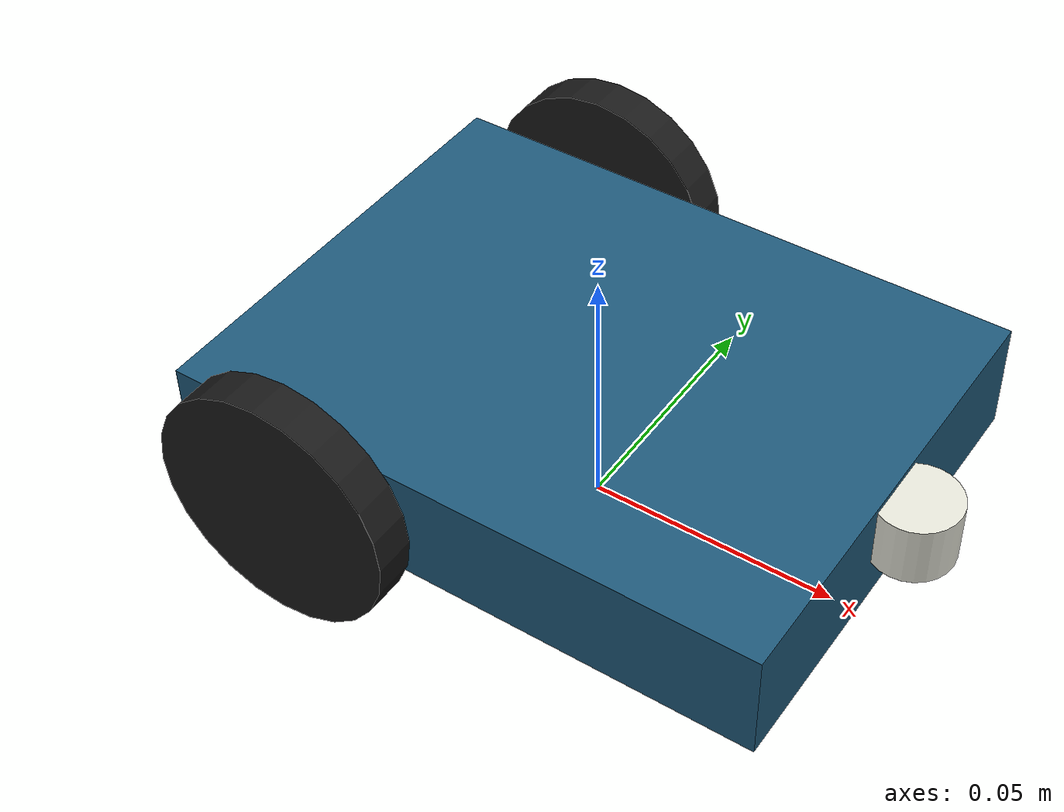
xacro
<?xml version="1.0"?>
<robot xmlns:xacro="http://www.ros.org/wiki/xacro" name="shiftgate_rover">
  <xacro:property name="wheel_radius" value="0.024"/>
  <xacro:property name="wheel_width" value="0.008"/>
  <xacro:property name="track" value="0.102"/>
  <xacro:property name="chassis_l" value="0.118"/>
  <xacro:property name="chassis_w" value="0.090"/>
  <xacro:property name="chassis_h" value="0.022"/>
  <xacro:property name="axle_z" value="0.024"/>

  <link name="base_link">
    <visual>
      <origin xyz="0 0 ${axle_z}" rpy="0 0 0"/>
      <geometry><box size="${chassis_l} ${chassis_w} ${chassis_h}"/></geometry>
      <material name="teal"><color rgba="0.12 0.35 0.48 1"/></material>
    </visual>
    <collision>
      <origin xyz="0 0 ${axle_z}" rpy="0 0 0"/>
      <geometry><box size="${chassis_l} ${chassis_w} ${chassis_h}"/></geometry>
    </collision>
    <inertial>
      <origin xyz="0 0 ${axle_z}" rpy="0 0 0"/>
      <mass value="0.40"/>
      <inertia ixx="0.001" iyy="0.0015" izz="0.0015" ixy="0" ixz="0" iyz="0"/>
    </inertial>
  </link>

  <xacro:macro name="wheel" params="name y_off">
    <link name="${name}">
      <visual>
        <origin xyz="0 0 0" rpy="1.5708 0 0"/>
        <geometry><cylinder radius="${wheel_radius}" length="${wheel_width}"/></geometry>
        <material name="black"><color rgba="0.1 0.1 0.1 1"/></material>
      </visual>
      <collision>
        <origin xyz="0 0 0" rpy="1.5708 0 0"/>
        <geometry><cylinder radius="${wheel_radius}" length="${wheel_width}"/></geometry>
      </collision>
      <inertial>
        <mass value="0.03"/>
        <inertia ixx="1e-5" iyy="1e-5" izz="1e-5" ixy="0" ixz="0" iyz="0"/>
      </inertial>
    </link>
    <joint name="${name}_joint" type="continuous">
      <parent link="base_link"/>
      <child link="${name}"/>
      <origin xyz="-0.031 ${y_off} ${axle_z}" rpy="0 0 0"/>
      <axis xyz="0 1 0"/>
    </joint>
  </xacro:macro>

  <xacro:wheel name="wheel_left" y_off="${track/2}"/>
  <xacro:wheel name="wheel_right" y_off="${-track/2}"/>

  <link name="ultrasonic_link">
    <visual>
      <geometry><cylinder radius="0.008" length="0.012"/></geometry>
      <material name="cream"><color rgba="0.9 0.9 0.85 1"/></material>
    </visual>
  </link>
  <joint name="ultrasonic_joint" type="fixed">
    <parent link="base_link"/>
    <child link="ultrasonic_link"/>
    <origin xyz="${chassis_l/2 + 0.004} 0 ${axle_z + 0.004}" rpy="0 0 0"/>
  </joint>

  <!-- Gazebo plugins are added by the gazebo xacro when included from the sim launch. -->
</robot>
